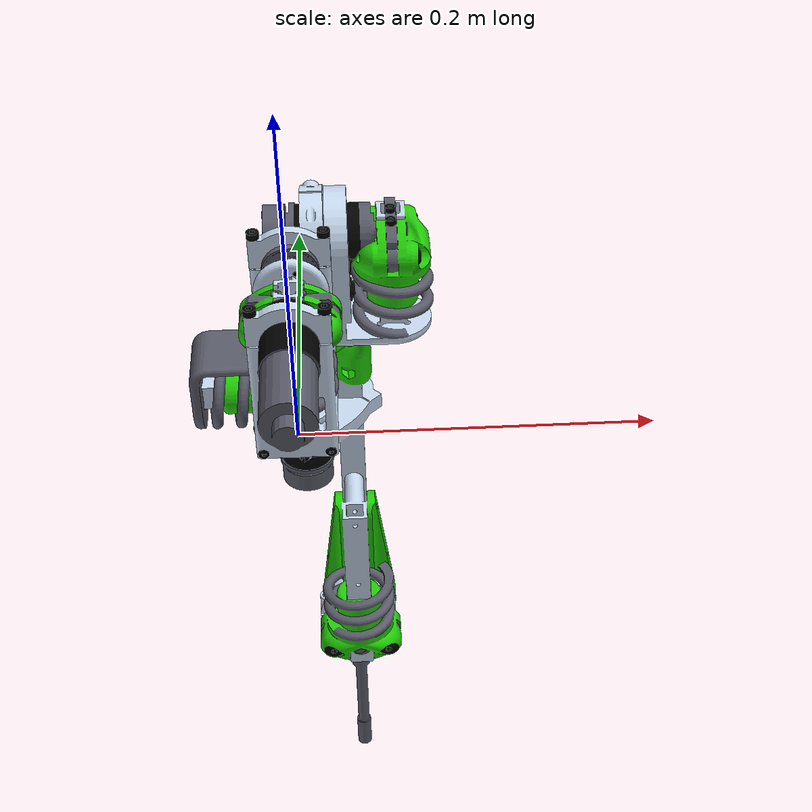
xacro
<?xml version="1.0"?>
<!-- Robot Reference Platform for Prototyping - Series Elastic Actuator Arm version 01 -->
<robot name="airp1_sea_arm_left" xmlns:xacro="http://www.ros.org/wiki/xacro">

  <!-- Constants -->
  <xacro:property name="damp" value="0.7" />    <!-- damping coefficient -->

  <!-- Default Inertial -->
  <xacro:macro name="default_inertial" params="z_value i_value mass">
    <inertial>
      <origin xyz="0 0 ${z_value}" rpy="0 0 0"/>
      <mass value="${mass}" />
      <inertia ixx="${i_value}" ixy="0.0" ixz="0.0"
               iyy="${i_value}" iyz="0.0"
               izz="${i_value}" />
    </inertial>
  </xacro:macro>

  <!-- Left Arm Link -->
  <link name="left_arm_link">
    <visual>
      <origin xyz="0 0 0" rpy="0 0 0"/>
      <geometry>
	    <mesh filename="package://airp1_sea_arm_description/meshes/visual/sea_arm_01_assem_01_arm_link_left.dae"/>
      </geometry>
    </visual>

    <collision>
      <origin xyz="0 0 0" rpy="0 0 0"/>
      <geometry>
	    <mesh filename="package://airp1_sea_arm_description/meshes/collision/sea_arm_01_assem_01_arm_link_left_collision.stl"/>
      </geometry>
    </collision>

    <inertial>
      <origin xyz="0 0 0" rpy="0 0 0"/>
      <mass value="1"/>
      <inertia
	  ixx="1.0" ixy="0.0" ixz="0.0"
	  iyy="1.0" iyz="0.0"
	  izz="1.0"/>
    </inertial>
  </link>

  <!-- Joint between Left Arm Link and Left Shoulder Pitch Link -->
  <joint name="left_arm_shoulder_pitch_joint" type="revolute">
    <parent link="left_arm_link"/>
    <child link="left_shoulder_pitch_link"/>
    <origin xyz="0 0.0872 0.0762" rpy="0 0 0"/>
    <axis xyz="0 1 0"/>
    <dynamics damping="${damp}"/>
    <limit effort="100.0" velocity="0.5" lower="-2.45" upper="0.5" />
  </joint>

  <!-- Left Shoulder Pitch Link -->
  <link name="left_shoulder_pitch_link">
    <visual>
      <origin xyz="0 0 0" rpy="0 0 0"/>
      <geometry>
	    <mesh filename="package://airp1_sea_arm_description/meshes/visual/sea_arm_01_assem_02_shoulder_pitch_link_left.dae"/>
      </geometry>
    </visual>

    <collision>
      <origin xyz="0 0 0" rpy="0 0 0"/>
      <geometry>
	    <mesh filename="package://airp1_sea_arm_description/meshes/collision/sea_arm_01_assem_02_shoulder_pitch_link_left_collision.stl"/>
      </geometry>
    </collision>

    <inertial>
      <origin xyz="0 0 0" rpy="0 0 0"/>
      <mass value="1"/>
      <inertia
	  ixx="1.0" ixy="0.0" ixz="0.0"
	  iyy="1.0" iyz="0.0"
	  izz="1.0"/>
    </inertial>
  </link>

  <!-- Joint between Left Shoulder Pitch Link and Left Shoulder Yaw Link -->
  <joint name="left_shoulder_pitch_shoulder_yaw_joint" type="revolute">
    <parent link="left_shoulder_pitch_link"/>
    <child link="left_shoulder_yaw_link"/>
    <origin xyz="0 0 0" rpy="0 0 0"/>
    <axis xyz="1 0 0"/>
    <dynamics damping="${damp}"/>
    <limit effort="100.0" velocity="0.5" lower="0" upper="3.14" />
  </joint>

  <!-- Left Shoulder Yaw Link -->
  <link name="left_shoulder_yaw_link">
    <visual>
      <origin xyz="0 0 0" rpy="0 0 0"/>
      <geometry>
	    <mesh filename="package://airp1_sea_arm_description/meshes/visual/sea_arm_01_assem_03_shoulder_yaw_link.dae"/>
      </geometry>
    </visual>

    <collision>
      <origin xyz="0 0 0" rpy="0 0 0"/>
      <geometry>
	    <mesh filename="package://airp1_sea_arm_description/meshes/collision/sea_arm_01_assem_03_shoulder_yaw_link_collision.stl"/>
      </geometry>
    </collision>

    <inertial>
      <origin xyz="0 0 0" rpy="0 0 0"/>
      <mass value="1"/>
      <inertia
	  ixx="1.0" ixy="0.0" ixz="0.0"
	  iyy="1.0" iyz="0.0"
	  izz="1.0"/>
    </inertial>
  </link>

  <!-- Joint between Left Shoulder Yaw Link and Left Upper Arm Link -->
  <joint name="left_shoulder_yaw_upper_arm_joint" type="revolute">
    <parent link="left_shoulder_yaw_link"/>
    <child link="left_upper_arm_link"/>
    <origin xyz="0 0 0" rpy="0 0 0"/>
    <axis xyz="0 0 1"/>
    <dynamics damping="${damp}"/>
    <limit effort="100.0" velocity="0.5" lower="-1.0" upper="0.9" />
  </joint>

  <!-- Left Upper Arm Link -->
  <link name="left_upper_arm_link">
    <visual>
      <origin xyz="0 0 0" rpy="0 0 0"/>
      <geometry>
	    <mesh filename="package://airp1_sea_arm_description/meshes/visual/sea_arm_01_assem_04_upper_arm_link_left.dae"/>
      </geometry>
    </visual>

    <collision>
      <origin xyz="0 0 0" rpy="0 0 0"/>
      <geometry>
	    <mesh filename="package://airp1_sea_arm_description/meshes/collision/sea_arm_01_assem_04_upper_arm_link_left_collision.stl"/>
      </geometry>
    </collision>

    <inertial>
      <origin xyz="0 0 0" rpy="0 0 0"/>
      <mass value="1"/>
      <inertia
	  ixx="1.0" ixy="0.0" ixz="0.0"
	  iyy="1.0" iyz="0.0"
	  izz="1.0"/>
    </inertial>
  </link>

  <!-- Joint between Left Upper Arm Link and Left Elbow Link -->
  <joint name="left_upper_arm_elbow_joint" type="revolute">
    <parent link="left_upper_arm_link"/>
    <child link="left_elbow_link"/>
    <origin xyz="0.02687 0.01587 -0.323" rpy="0 0 0"/>
    <axis xyz="0 1 0"/>
    <dynamics damping="${damp}"/>
    <limit effort="100.0" velocity="0.5" lower="-2.3" upper="0" />
  </joint>

  <!-- Left Elbow Link -->
  <link name="left_elbow_link">
    <visual>
      <origin xyz="0 0 0" rpy="0 0 0"/>
      <geometry>
	    <mesh filename="package://airp1_sea_arm_description/meshes/visual/sea_arm_01_assem_05_elbow_link_left.dae"/>
      </geometry>
    </visual>

    <collision>
      <origin xyz="0 0 0" rpy="0 0 0"/>
      <geometry>
	    <mesh filename="package://airp1_sea_arm_description/meshes/collision/sea_arm_01_assem_05_elbow_link_left_collision.stl"/>
      </geometry>
    </collision>

    <inertial>
      <origin xyz="0 0 0" rpy="0 0 0"/>
      <mass value="1"/>
      <inertia
	  ixx="1.0" ixy="0.0" ixz="0.0"
	  iyy="1.0" iyz="0.0"
	  izz="1.0"/>
    </inertial>
  </link>

</robot>
